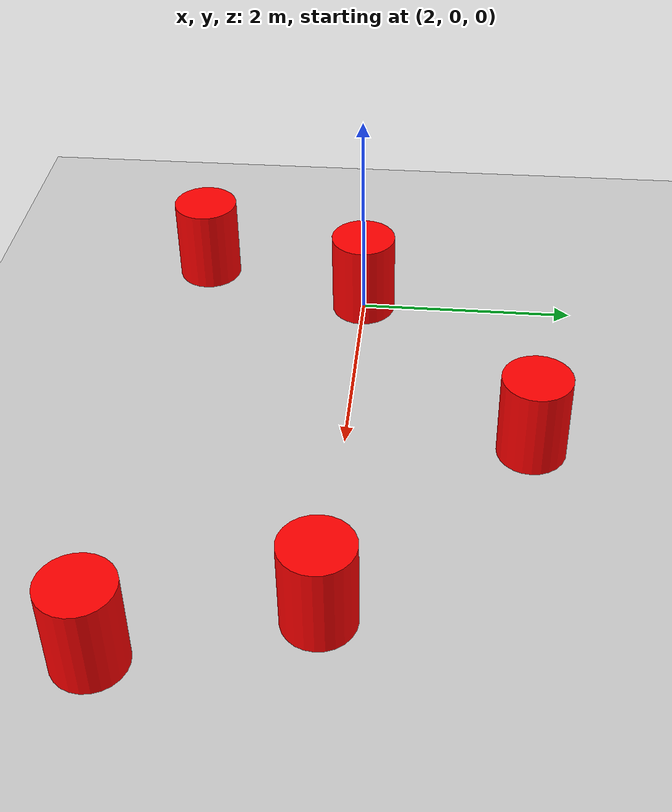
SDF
<?xml version="1.0" ?>
<sdf version="1.9">
  <world name="test_small_cyc_nowall">
    <physics name="1ms" type="ignored">
      <max_step_size>0.001</max_step_size>
      <real_time_factor>1</real_time_factor>
      <real_time_update_rate>1000</real_time_update_rate>
    </physics>

    <plugin name="ignition::gazebo::systems::Physics" filename="ignition-gazebo-physics-system"/>
    <plugin name="ignition::gazebo::systems::UserCommands" filename="ignition-gazebo-user-commands-system"/>
    <plugin name="ignition::gazebo::systems::SceneBroadcaster" filename="ignition-gazebo-scene-broadcaster-system"/>
    <plugin name="ignition::gazebo::systems::Contact" filename="ignition-gazebo-contact-system"/>

    <light name="sun" type="directional">
      <pose>0 0 10 0 0 0</pose>
      <cast_shadows>true</cast_shadows>
      <intensity>1.2</intensity>
      <direction>-0.5 0.1 -0.9</direction>
      <diffuse>1 1 1 1</diffuse>
      <specular>0.2 0.2 0.2 1</specular>
    </light>

    <model name="ground_plane">
      <static>true</static>
      <link name="link">
        <collision name="collision"><geometry><plane><normal>0 0 1</normal><size>100 100</size></plane></geometry></collision>
        <visual name="visual">
          <geometry><plane><normal>0 0 1</normal><size>100 100</size></plane></geometry>
          <material><ambient>0.8 0.8 0.8 1</ambient><diffuse>0.8 0.8 0.8 1</diffuse></material>
        </visual>
      </link>
    </model>

    <model name="obstacle_0">
      <pose>1.50 -1.60 0.40 0 0 1.570796</pose>
      <link name="link">
        <kinematic>true</kinematic>

        <inertial>
          <mass>10.0</mass>
          <inertia>
            <ixx>1.0</ixx>
            <iyy>1.0</iyy>
            <izz>1.0</izz>
            <ixy>0.0</ixy>
            <ixz>0.0</ixz>
            <iyz>0.0</iyz>
          </inertia>
        </inertial>

        <collision name="collision">
          <geometry>
            <cylinder>
              <radius>0.30</radius>
              <length>0.80</length>
            </cylinder>
          </geometry>
        </collision>

        <visual name="visual">
          <geometry>
            <cylinder>
              <radius>0.30</radius>
              <length>0.80</length>
            </cylinder>
          </geometry>
          <material>
            <ambient>1 0 0 1</ambient>
            <diffuse>1 0 0 1</diffuse>
          </material>
        </visual>
      </link>

      <plugin filename="ignition-gazebo-velocity-control-system" name="ignition::gazebo::systems::VelocityControl">
        <topic>/obstacle_0/cmd_vel</topic>
      </plugin>
    </model>
    <model name="obstacle_1">
      <pose>4.00 1.60 0.40 0 0 -1.570796</pose>
      <link name="link">
        <kinematic>true</kinematic>

        <inertial>
          <mass>10.0</mass>
          <inertia>
            <ixx>1.0</ixx>
            <iyy>1.0</iyy>
            <izz>1.0</izz>
            <ixy>0.0</ixy>
            <ixz>0.0</ixz>
            <iyz>0.0</iyz>
          </inertia>
        </inertial>

        <collision name="collision">
          <geometry>
            <cylinder>
              <radius>0.30</radius>
              <length>0.80</length>
            </cylinder>
          </geometry>
        </collision>

        <visual name="visual">
          <geometry>
            <cylinder>
              <radius>0.30</radius>
              <length>0.80</length>
            </cylinder>
          </geometry>
          <material>
            <ambient>1 0 0 1</ambient>
            <diffuse>1 0 0 1</diffuse>
          </material>
        </visual>
      </link>

      <plugin filename="ignition-gazebo-velocity-control-system" name="ignition::gazebo::systems::VelocityControl">
        <topic>/obstacle_1/cmd_vel</topic>
      </plugin>
    </model>
    <model name="obstacle_2">
      <pose>6.50 -1.60 0.40 0 0 1.570796</pose>
      <link name="link">
        <kinematic>true</kinematic>

        <inertial>
          <mass>10.0</mass>
          <inertia>
            <ixx>1.0</ixx>
            <iyy>1.0</iyy>
            <izz>1.0</izz>
            <ixy>0.0</ixy>
            <ixz>0.0</ixz>
            <iyz>0.0</iyz>
          </inertia>
        </inertial>

        <collision name="collision">
          <geometry>
            <cylinder>
              <radius>0.30</radius>
              <length>0.80</length>
            </cylinder>
          </geometry>
        </collision>

        <visual name="visual">
          <geometry>
            <cylinder>
              <radius>0.30</radius>
              <length>0.80</length>
            </cylinder>
          </geometry>
          <material>
            <ambient>1 0 0 1</ambient>
            <diffuse>1 0 0 1</diffuse>
          </material>
        </visual>
      </link>

      <plugin filename="ignition-gazebo-velocity-control-system" name="ignition::gazebo::systems::VelocityControl">
        <topic>/obstacle_2/cmd_vel</topic>
      </plugin>
    </model>
    <model name="obstacle_3">
      <pose>2.00 0.00 0.40 0 0 0.000000</pose>
      <link name="link">
        <kinematic>true</kinematic>

        <inertial>
          <mass>10.0</mass>
          <inertia>
            <ixx>1.0</ixx>
            <iyy>1.0</iyy>
            <izz>1.0</izz>
            <ixy>0.0</ixy>
            <ixz>0.0</ixz>
            <iyz>0.0</iyz>
          </inertia>
        </inertial>

        <collision name="collision">
          <geometry>
            <cylinder>
              <radius>0.30</radius>
              <length>0.80</length>
            </cylinder>
          </geometry>
        </collision>

        <visual name="visual">
          <geometry>
            <cylinder>
              <radius>0.30</radius>
              <length>0.80</length>
            </cylinder>
          </geometry>
          <material>
            <ambient>1 0 0 1</ambient>
            <diffuse>1 0 0 1</diffuse>
          </material>
        </visual>
      </link>

      <plugin filename="ignition-gazebo-velocity-control-system" name="ignition::gazebo::systems::VelocityControl">
        <topic>/obstacle_3/cmd_vel</topic>
      </plugin>
    </model>
    <model name="obstacle_4">
      <pose>6.00 0.00 0.40 0 0 3.141593</pose>
      <link name="link">
        <kinematic>true</kinematic>

        <inertial>
          <mass>10.0</mass>
          <inertia>
            <ixx>1.0</ixx>
            <iyy>1.0</iyy>
            <izz>1.0</izz>
            <ixy>0.0</ixy>
            <ixz>0.0</ixz>
            <iyz>0.0</iyz>
          </inertia>
        </inertial>

        <collision name="collision">
          <geometry>
            <cylinder>
              <radius>0.30</radius>
              <length>0.80</length>
            </cylinder>
          </geometry>
        </collision>

        <visual name="visual">
          <geometry>
            <cylinder>
              <radius>0.30</radius>
              <length>0.80</length>
            </cylinder>
          </geometry>
          <material>
            <ambient>1 0 0 1</ambient>
            <diffuse>1 0 0 1</diffuse>
          </material>
        </visual>
      </link>

      <plugin filename="ignition-gazebo-velocity-control-system" name="ignition::gazebo::systems::VelocityControl">
        <topic>/obstacle_4/cmd_vel</topic>
      </plugin>
    </model>
  </world>
</sdf>
